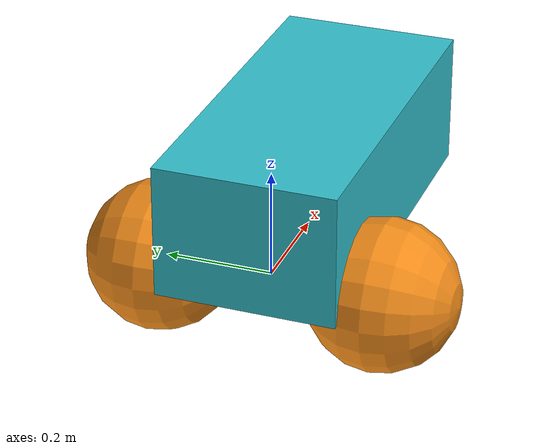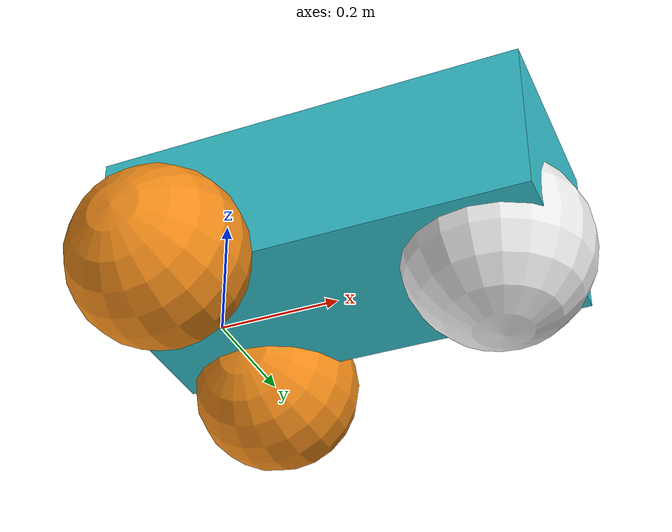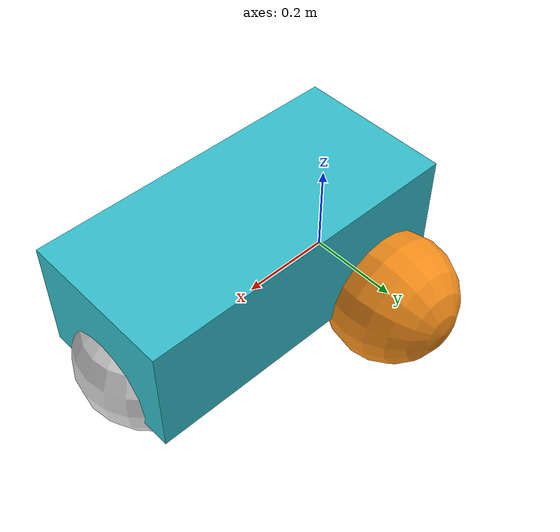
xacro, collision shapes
<?xml version="1.0"?>
<robot xmlns:xacro="http://www.ros.org/wiki/xacro" >

    <xacro:include filename="inertial_macros.xacro"/>

    <xacro:property name="chassis_length" value="0.7"/>
    <xacro:property name="chassis_width" value="0.336"/>
    <xacro:property name="chassis_height" value="0.25"/>
    <xacro:property name="chassis_mass" value="10"/>
    <xacro:property name="chassis_offset" value="0.14"/>
    <xacro:property name="wheel_radius" value="0.14"/>
    <xacro:property name="wheel_thickness" value="0.07"/>
    <xacro:property name="wheel_mass" value="0.5"/>
    <xacro:property name="wheel_offset_x" value="0.226"/>
    <xacro:property name="wheel_offset_y" value="0.21"/>
    <xacro:property name="wheel_offset_z" value="0.01"/>
    <xacro:property name="caster_wheel_radius" value="0.151"/>
    <xacro:property name="caster_wheel_mass" value="0.2"/>
    <xacro:property name="caster_wheel_offset_x" value="0.6"/>
    <xacro:property name="caster_wheel_offset_z" value="${wheel_offset_z - wheel_radius + caster_wheel_radius}"/>

    <!-- BASE LINK: Centre between differential drive motors/wheels -->

    <link name="base_link">
    </link>

    <!-- BASE_FOOTPRINT LINK: Projection from base link to ground -->

    <joint name="base_footprint_joint" type="fixed">
        <parent link="base_link"/>
        <child link="base_footprint"/>
        <origin xyz="0 0 -0.14" rpy="0 0 0"/>
    </joint>
    <link name="base_footprint">
    </link>

    <!-- CHASSIS LINK -->

    <joint name="chassis_joint" type="fixed">
        <parent link="base_link"/>
        <child link="chassis"/>
        <origin xyz="${-chassis_offset} 0 0"/>
    </joint>

    <link name="chassis">
        <visual>
            <origin rpy="0 0 ${-pi/2}" xyz="${chassis_length/2} 0 ${chassis_height/4}"/>
            <geometry>
                <mesh filename="package://nvidia-carter/description/meshes/carter-chassis+castors.stl"/>
            </geometry>
            <material name="cyan"/>
        </visual>
        <collision>
            <origin xyz="${chassis_length/2} 0 ${chassis_height/2}"/>
            <geometry>
                <box size="${chassis_length} ${chassis_width} ${chassis_height}"/>
            </geometry>
        </collision>
        <xacro:inertial_box mass="0.5" x="${chassis_length}" y="${chassis_width}" z="${chassis_height}">
            <origin xyz="${chassis_length/2} 0 ${chassis_height/2}" rpy="0 0 0"/>
        </xacro:inertial_box>
    </link>

    <!-- LEFT WHEEL LINK -->

    <joint name="left_wheel_joint" type="continuous">
        <parent link="base_link"/>
        <child link="left_wheel"/>
        <origin xyz="0 ${-wheel_offset_y} 0" rpy="${pi/2} 0 0" />
        <axis xyz="0 0 1"/>
    </joint>

    <link name="left_wheel">
        <visual>
            <origin rpy="0 ${pi/2} 0" xyz="0 0 0"/>
            <geometry>
                <mesh filename="package://nvidia-carter/description/meshes/carter-left-wheel.stl"/>
            </geometry>
            <material name="orange"/>
        </visual>
        <collision>
            <geometry>
                <sphere radius="${wheel_radius}"/>
            </geometry>
        </collision>
        <xacro:inertial_cylinder mass="${wheel_mass}" length="${wheel_thickness}" radius="${wheel_radius}">
            <origin xyz="0 0 0" rpy="0 0 0"/>
        </xacro:inertial_cylinder>
    </link>

    <gazebo reference="left_wheel">
        <material>Gazebo/Blue</material>
    </gazebo>

    <!-- RIGHT WHEEL LINK -->

    <joint name="right_wheel_joint" type="continuous">
        <parent link="base_link"/>
        <child link="right_wheel"/>
        <origin xyz="0 ${wheel_offset_y} 0" rpy="${-pi/2} 0 0" />
        <axis xyz="0 0 -1"/>
    </joint>

    <link name="right_wheel">
        <visual>
            <origin rpy="0 ${pi/2} 0" xyz="0 0 0"/>
            <geometry>
                <mesh filename="package://nvidia-carter/description/meshes/carter-left-wheel.stl"/>
            </geometry>
            <material name="orange"/>
        </visual>
        <collision>
            <geometry>
                <sphere radius="${wheel_radius}"/>
            </geometry>
        </collision>
        <xacro:inertial_cylinder mass="${wheel_mass}" length="${wheel_thickness}" radius="${wheel_radius}">
            <origin xyz="0 0 0" rpy="0 0 0"/>
        </xacro:inertial_cylinder>
    </link>

    <gazebo reference="right_wheel">
        <material>Gazebo/Blue</material>
    </gazebo>

    <!-- CASTER WHEEL LINK -->

    <joint name="caster_wheel_joint" type="fixed">
        <parent link="chassis"/>
        <child link="caster_wheel"/>
        <origin xyz="${caster_wheel_offset_x} 0 ${caster_wheel_offset_z}"/>
    </joint>

    <link name="caster_wheel">
        <visual>
            <geometry>
                <sphere radius="${caster_wheel_radius}"/>
            </geometry>
            <material name="white"/>
        </visual>
        <collision>
            <geometry>
                <sphere radius="${caster_wheel_radius}"/>
            </geometry>
        </collision>
        <xacro:inertial_sphere mass="${caster_wheel_mass}" radius="${caster_wheel_radius}">
            <origin xyz="0 0 0" rpy="0 0 0"/>
        </xacro:inertial_sphere>
    </link>

    <gazebo reference="caster_wheel">
        <material>Gazebo/White</material>
        <mu1 value="0.001"/>
        <mu2 value="0.001"/>
    </gazebo>

</robot>
